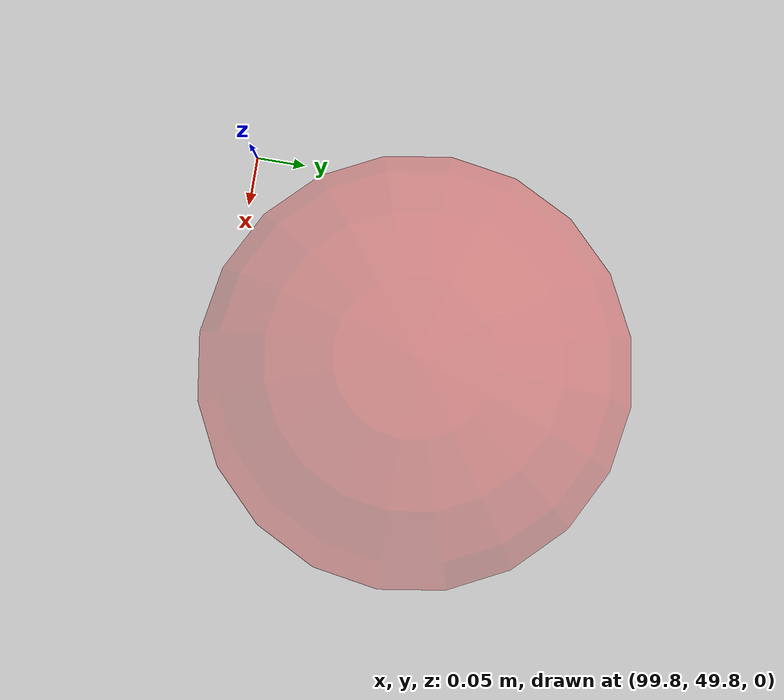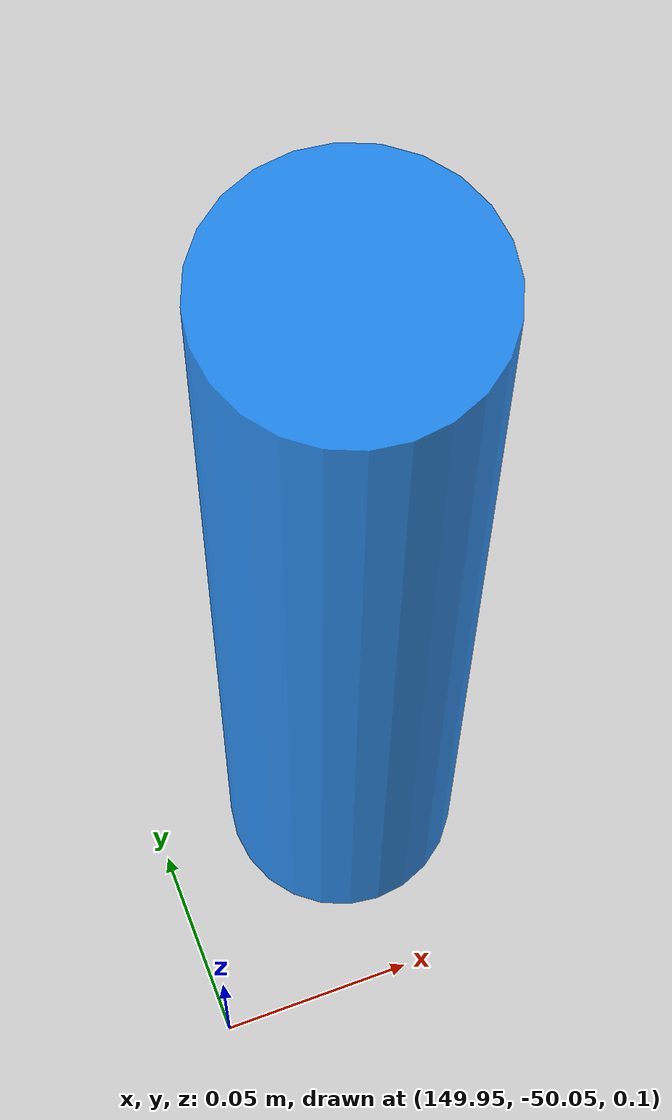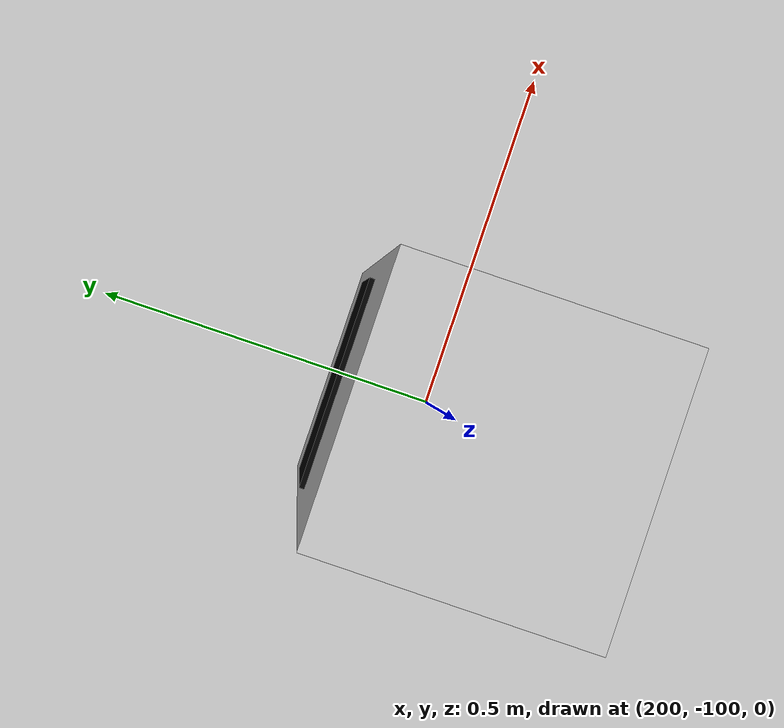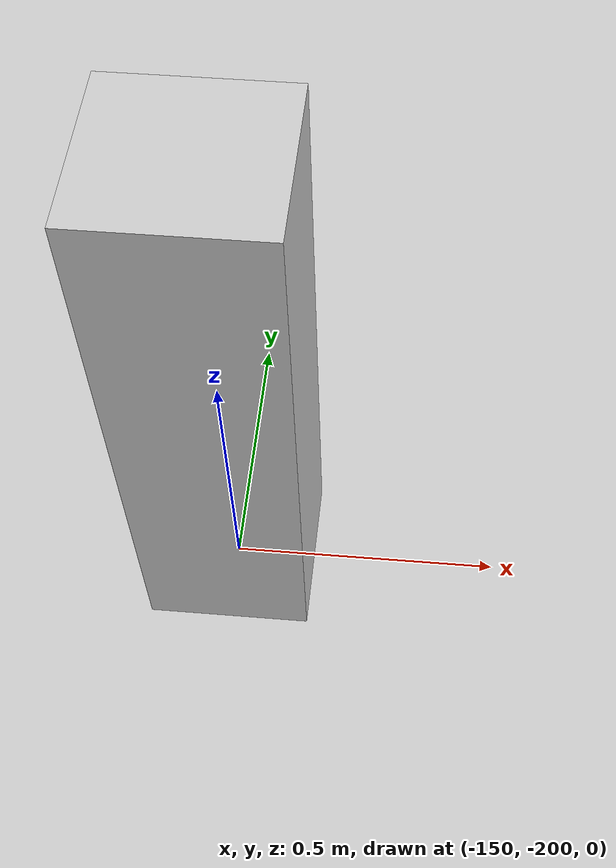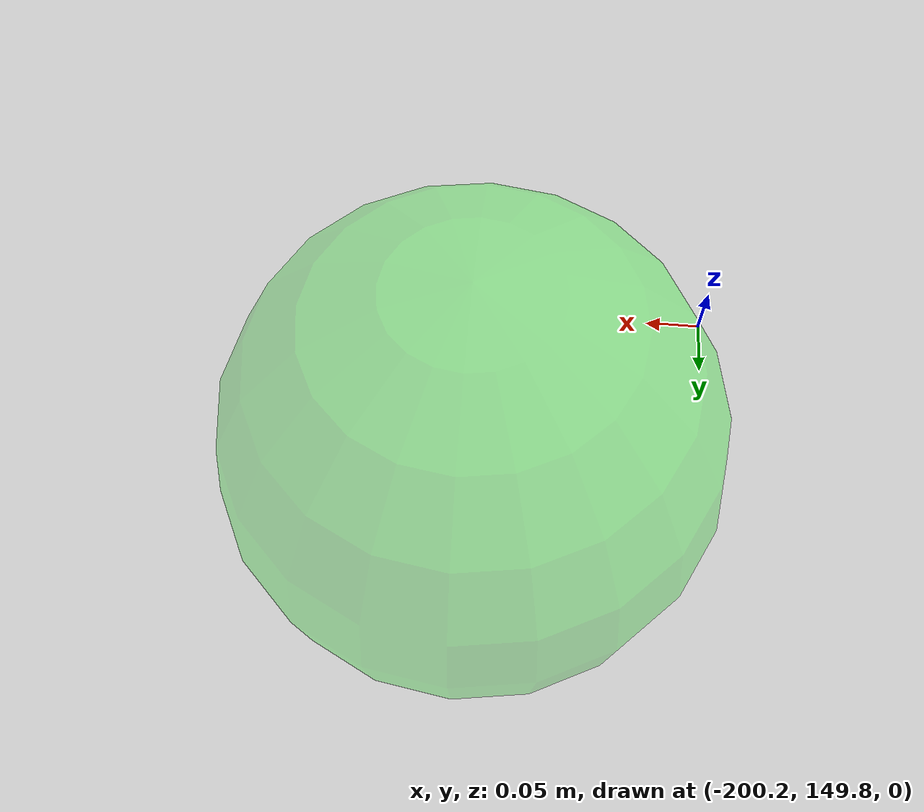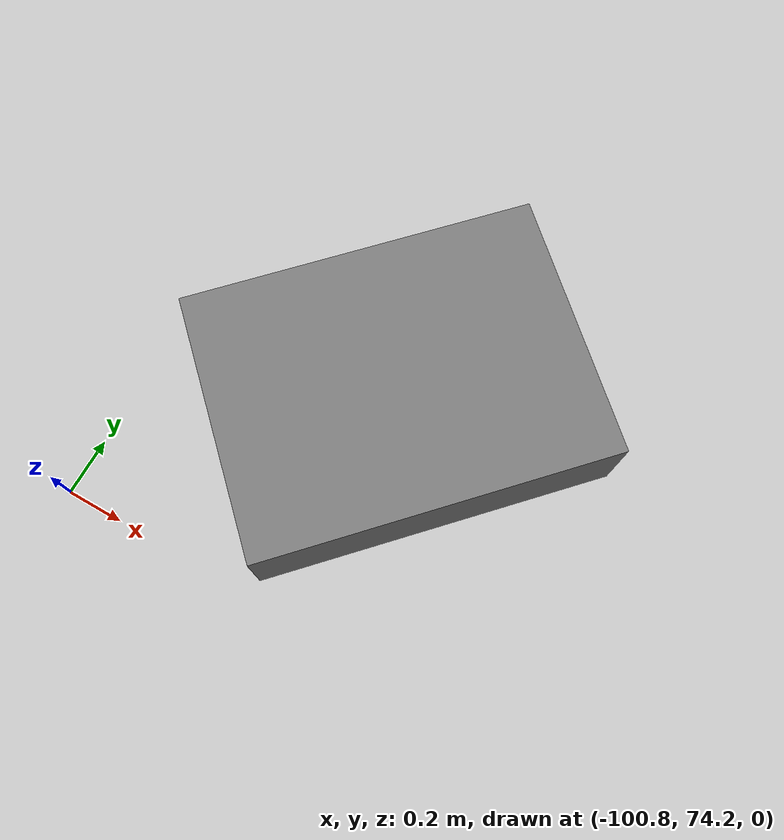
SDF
<?xml version="1.0"?>
<sdf version="1.7">
  <world name="mars_desert">

    <!-- Mars-like physics -->
    <physics name="mars_physics" type="ode">
      <gravity>0 0 -3.71</gravity> <!-- Mars gravity: ~3.71 m/s² -->
      <ode>
        <solver>
          <type>quick</type>
          <iters>150</iters>
          <sor>1.4</sor>
          <use_dynamic_moi_rescaling>1</use_dynamic_moi_rescaling>
        </solver>
        <constraints>
          <cfm>0.00001</cfm>
          <erp>0.2</erp>
          <contact_max_correcting_vel>1000.0</contact_max_correcting_vel>
          <contact_surface_layer>0.001</contact_surface_layer>
        </constraints>
      </ode>
      <real_time_update_rate>1000.0</real_time_update_rate>
      <max_step_size>0.001</max_step_size>
    </physics>

    <!-- Mars-like atmosphere -->
    <atmosphere type="mars">
      <temperature>210</temperature>
      <pressure>636</pressure> <!-- ~6 mbar -->
    </atmosphere>

    <!-- Lighting conditions -->
    <light name="sun" type="directional">
      <pose>0 0 100 0 0 0</pose>
      <diffuse>0.9 0.85 0.8 1</diffuse>
      <specular>0.3 0.3 0.3 1</specular>
      <direction>-0.3 0.4 -0.8</direction>
      <attenuation>
        <range>1000</range>
        <constant>0.9</constant>
        <linear>0.01</linear>
        <quadratic>0.001</quadratic>
      </attenuation>
      <cast_shadows>true</cast_shadows>
    </light>

    <!-- Mars ground plane -->
    <model name="mars_ground">
      <static>true</static>
      <link name="link">
        <collision name="collision">
          <geometry>
            <plane>
              <normal>0 0 1</normal>
              <size>2000 2000</size>
            </plane>
          </geometry>
          <surface>
            <friction>
              <ode>
                <mu>0.8</mu> <!-- Mars soil friction -->
                <mu2>0.6</mu2>
              </ode>
            </friction>
          </surface>
        </collision>
        <visual name="visual">
          <geometry>
            <plane>
              <normal>0 0 1</normal>
              <size>2000 2000</size>
            </plane>
          </geometry>
          <material>
            <script>
              <uri>model://mars_ground/materials/scripts/mars.material</uri>
              <name>Mars/MarsSurface</name>
            </script>
          </material>
        </visual>
      </link>
    </model>

    <!-- Competition course markers -->

    <!-- GNSS-only targets (invisible in simulation, only for GPS testing) -->
    <model name="gnss_target_1">
      <pose>100 50 0.1 0 0 0</pose>
      <static>true</static>
      <link name="link">
        <visual name="visual">
          <geometry>
            <sphere>
              <radius>0.2</radius>
            </sphere>
          </geometry>
          <material>
            <diffuse>1 0 0 0.3</diffuse> <!-- Semi-transparent red -->
          </material>
        </visual>
        <!-- No collision - invisible to physics -->
      </link>
    </model>

    <model name="gnss_target_2">
      <pose>-200 150 0.1 0 0 0</pose>
      <static>true</static>
      <link name="link">
        <visual name="visual">
          <geometry>
            <sphere>
              <radius>0.2</radius>
            </sphere>
          </geometry>
          <material>
            <diffuse>0 1 0 0.3</diffuse> <!-- Semi-transparent green -->
          </material>
        </visual>
      </link>
    </model>

    <!-- AR tag posts -->
    <model name="ar_post_1">
      <pose>200 -100 0 0 0 0</pose>
      <static>true</static>
      <link name="link">
        <collision name="collision">
          <geometry>
            <box>
              <size>0.3 0.3 2.0</size>
            </box>
          </geometry>
        </collision>
        <visual name="visual">
          <geometry>
            <box>
              <size>0.3 0.3 2.0</size>
            </box>
          </geometry>
          <material>
            <diffuse>0.8 0.8 0.8 1</diffuse>
          </material>
        </visual>
        <!-- AR tag texture would be applied here -->
        <visual name="ar_tag">
          <pose>0 0.151 0.5 0 0 0</pose>
          <geometry>
            <box>
              <size>0.25 0.01 0.25</size>
            </box>
          </geometry>
          <material>
            <diffuse>0 0 0 1</diffuse> <!-- Black AR tag -->
          </material>
        </visual>
      </link>
    </model>

    <model name="ar_post_2">
      <pose>-150 -200 0 0 0 0</pose>
      <static>true</static>
      <link name="link">
        <collision name="collision">
          <geometry>
            <box>
              <size>0.3 0.3 2.0</size>
            </box>
          </geometry>
        </collision>
        <visual name="visual">
          <geometry>
            <box>
              <size>0.3 0.3 2.0</size>
            </box>
          </geometry>
          <material>
            <diffuse>0.8 0.8 0.8 1</diffuse>
          </material>
        </visual>
        <visual name="ar_tag">
          <pose>0 0.151 0.5 0 0 0</pose>
          <geometry>
            <box>
              <size>0.25 0.01 0.25</size>
            </box>
          </geometry>
          <material>
            <diffuse>0 0 0 1</diffuse>
          </material>
        </visual>
      </link>
    </model>

    <!-- Ground objects (competition elements) -->
    <model name="orange_mallet">
      <pose>50 150 0.4 0 0 0.3</pose>
      <static>true</static>
      <link name="link">
        <collision name="collision">
          <geometry>
            <cylinder>
              <radius>0.04</radius>
              <length>0.9</length>
            </cylinder>
          </geometry>
        </collision>
        <visual name="visual">
          <geometry>
            <cylinder>
              <radius>0.04</radius>
              <length>0.9</length>
            </cylinder>
          </geometry>
          <material>
            <diffuse>1 0.5 0 1</diffuse> <!-- Orange -->
          </material>
        </visual>
      </link>
    </model>

    <model name="hammer">
      <pose>-50 200 0.3 0.2 0.1 0</pose>
      <static>true</static>
      <link name="link">
        <collision name="collision">
          <geometry>
            <box>
              <size>0.15 0.08 0.6</size>
            </box>
          </geometry>
        </collision>
        <visual name="visual">
          <geometry>
            <box>
              <size>0.15 0.08 0.6</size>
            </box>
          </geometry>
          <material>
            <diffuse>0.6 0.4 0.2 1</diffuse> <!-- Brown/metal -->
          </material>
        </visual>
      </link>
    </model>

    <model name="water_bottle">
      <pose>150 -50 0.25 0 0 0</pose>
      <static>true</static>
      <link name="link">
        <collision name="collision">
          <geometry>
            <cylinder>
              <radius>0.03</radius>
              <length>0.3</length>
            </cylinder>
          </geometry>
        </collision>
        <visual name="visual">
          <geometry>
            <cylinder>
              <radius>0.03</radius>
              <length>0.3</length>
            </cylinder>
          </geometry>
          <material>
            <diffuse>0 0.5 1 0.8</diffuse> <!-- Blue/translucent -->
          </material>
        </visual>
      </link>
    </model>

    <!-- Terrain obstacles -->
    <model name="rock_1">
      <pose>75 25 0 0 0 0.5</pose>
      <static>true</static>
      <link name="link">
        <collision name="collision">
          <geometry>
            <sphere>
              <radius>0.8</radius>
            </sphere>
          </geometry>
        </collision>
        <visual name="visual">
          <geometry>
            <sphere>
              <radius>0.8</radius>
            </sphere>
          </geometry>
          <material>
            <diffuse>0.4 0.4 0.4 1</diffuse>
          </material>
        </visual>
      </link>
    </model>

    <model name="rock_2">
      <pose>-100 75 0 0 0 0.8</pose>
      <static>true</static>
      <link name="link">
        <collision name="collision">
          <geometry>
            <box>
              <size>1.2 0.9 0.6</size>
            </box>
          </geometry>
        </collision>
        <visual name="visual">
          <geometry>
            <box>
              <size>1.2 0.9 0.6</size>
            </box>
          </geometry>
          <material>
            <diffuse>0.5 0.5 0.5 1</diffuse>
          </material>
        </visual>
      </link>
    </model>

    <!-- Wind simulation plugin -->
    <plugin name="wind" filename="libWindPlugin.so">
      <wind_velocity>3.0</wind_velocity>
      <wind_direction>1.57</wind_direction> <!-- 90 degrees -->
      <linear_velocity_tolerance>0.01</linear_velocity_tolerance>
    </plugin>

    <!-- Dust simulation plugin -->
    <plugin name="dust" filename="libDustEffect.so">
      <dust_density>0.005</dust_density>
      <wind_velocity>2.0</wind_velocity>
      <dust_size>0.001</dust_size>
    </plugin>

  </world>
</sdf>
